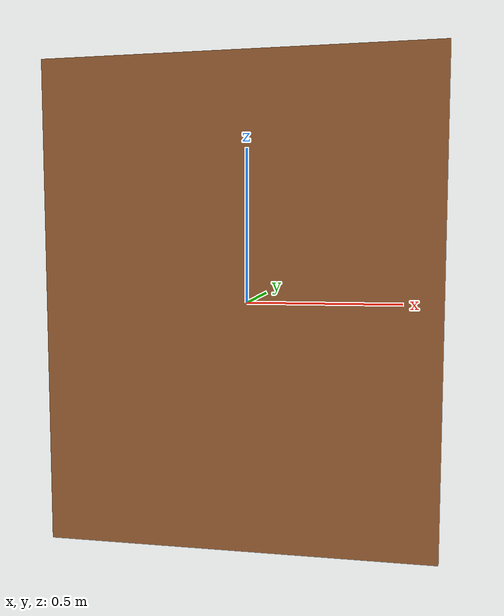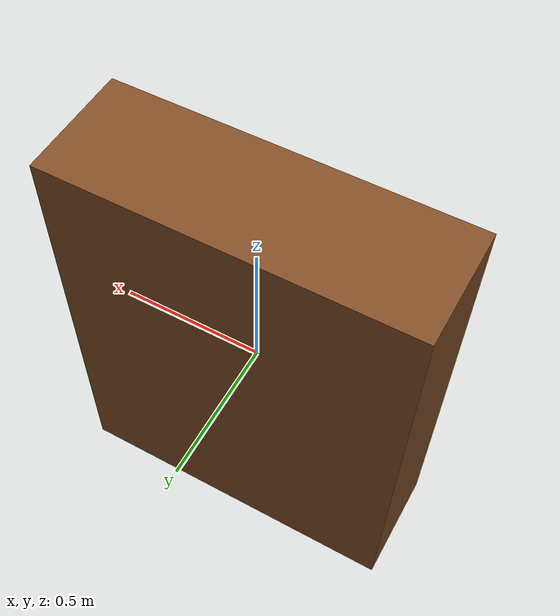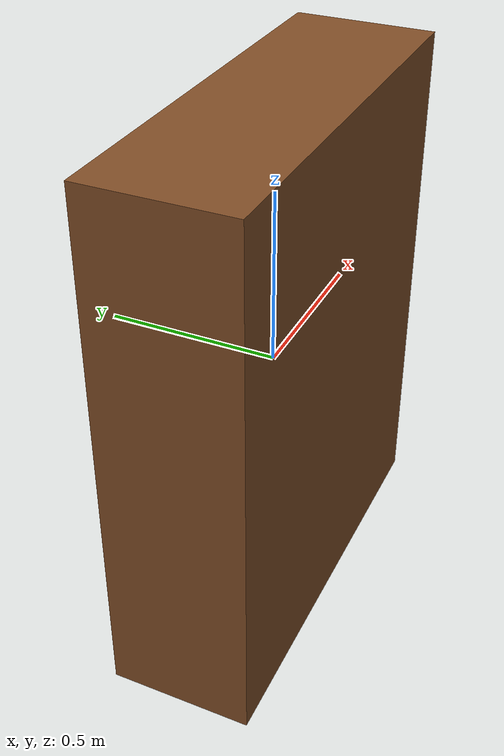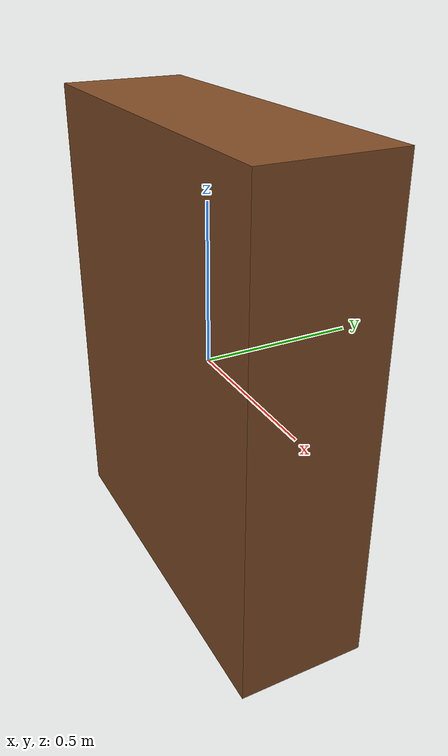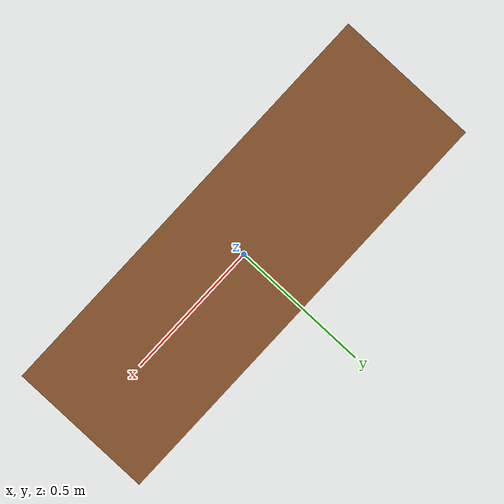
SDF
<?xml version="1.0"?>
<sdf version="1.10">
  <model name="smart_shelf">

    <static>true</static>

    <link name="shelf_link">

      <!-- Collisione (importante per evitare robot attraversino) -->
      <collision name="collision">
        <geometry>
          <box>
            <size>1.2 0.4 1.5</size>
          </box>
        </geometry>
      </collision>

      <!-- Visual -->
      <visual name="visual">
        <geometry>
          <box>
            <size>1.2 0.4 1.5</size>
          </box>
        </geometry>
        <material>
          <ambient>0.4 0.25 0.1 1</ambient>
          <diffuse>0.5 0.3 0.15 1</diffuse>
        </material>
      </visual>

      <!-- Inerzia (serve anche se statico per evitare warning) -->
      <inertial>
        <mass>10.0</mass>
        <inertia>
          <ixx>1</ixx>
          <iyy>1</iyy>
          <izz>1</izz>
          <ixy>0</ixy>
          <ixz>0</ixz>
          <iyz>0</iyz>
        </inertia>
      </inertial>

    </link>

  </model>
</sdf>
